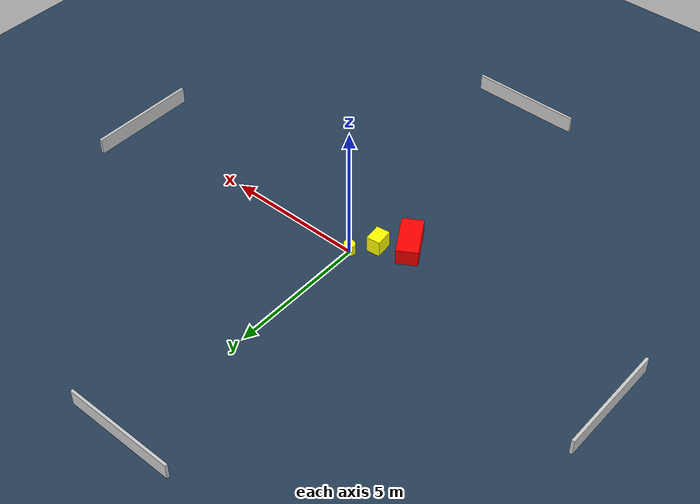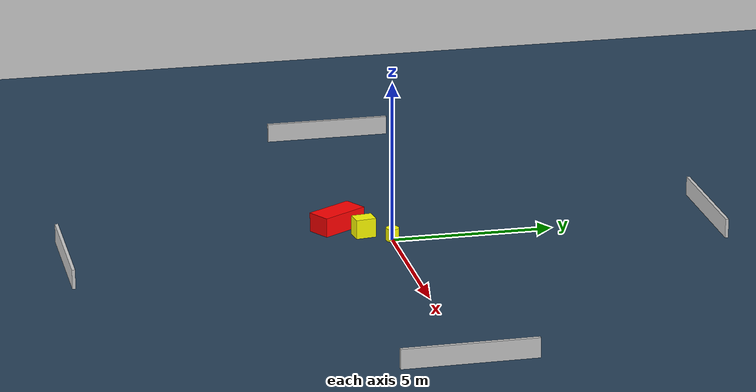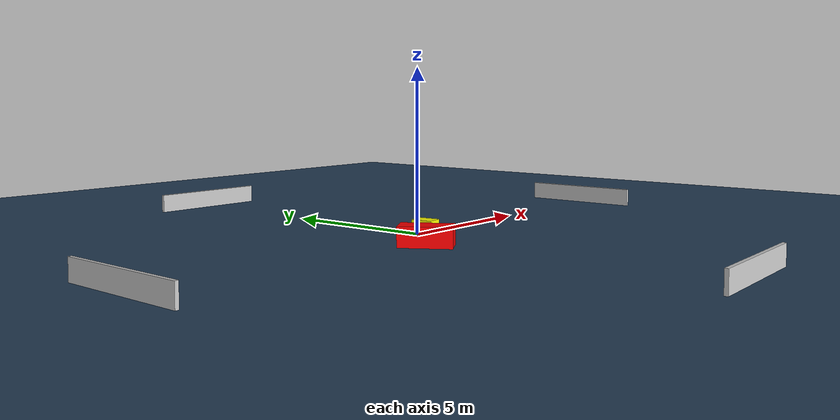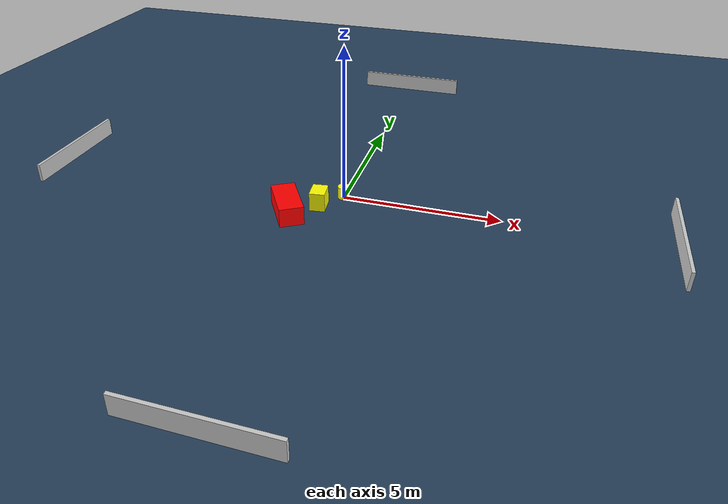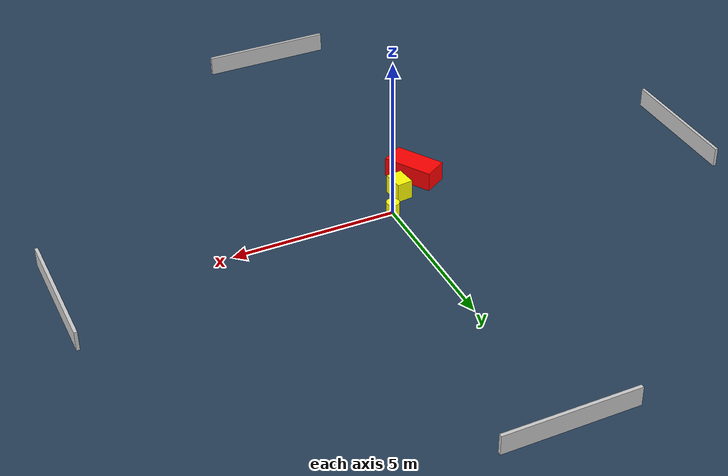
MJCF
<?xml version="1.0" ?>
<mujoco model="generated_environment">
  <option timestep="0.01" integrator="RK4" cone="elliptic"/>
  <default>
    <geom density="1"/>
  </default>
  <asset>
    <texture builtin="gradient" height="3072" name="skybox" rgb1="0.3 0.5 0.7" rgb2="0 0 0" type="skybox" width="512"/>
    <texture builtin="checker" height="300" name="groundplane" rgb1="0.2 0.3 0.4" rgb2="0.1 0.2 0.3" type="2d" width="300"/>
    <material name="groundplane" reflectance="0.2" texrepeat="5 5" texture="groundplane"/>
  </asset>
  <worldbody>
    <light dir="0 0 -1" directional="true" pos="0 0 1.5"/>
    <geom condim="3" friction="0.5 0.005 0.001" material="groundplane" name="floor" pos="0 0 0" size="0 0 0.05" type="plane"/>
    <body name="walls">
      <geom name="wall_1" condim="4" pos="-10.0 0.0 0.3" rgba="0.800000011920929 0.800000011920929 0.800000011920929 1.0" size="0.05 2.0 0.3" type="box"/>
      <geom name="wall_2" condim="4" pos="10.0 0.0 0.3" rgba="0.800000011920929 0.800000011920929 0.800000011920929 1.0" size="0.05 2.0 0.3" type="box"/>
      <geom name="wall_3" condim="4" pos="0.0 -10.0 0.3" rgba="0.800000011920929 0.800000011920929 0.800000011920929 1.0" size="2.0 0.05 0.3" type="box"/>
      <geom name="wall_4" condim="4" pos="0.0 10.0 0.3" rgba="0.800000011920929 0.800000011920929 0.800000011920929 1.0" size="2.0 0.05 0.3" type="box"/>
    </body>
    <body name="robot">
      <joint name="joint_x" type="slide" pos="0 0 0" axis="1 0 0"/>
      <joint name="joint_y" type="slide" pos="0 0 0" axis="0 1 0"/>
      <geom name="robot" type="cylinder" pos="0.0 0.0 0.2" size="0.2 0.2 0.0" mass="5.0" friction="1.0 0.005 0.0001" condim="4" rgba="1.0 1.0 0.0 1.0"/>
    </body>
    <body name="obstacle_1_movable">
      <geom name="obstacle_1_movable" condim="4" pos="-0.5819122818580643 -0.7695996167744186 0.3" euler="0 0 276.9668108693121" friction="0.0 0.005 0.001" rgba="1.0 1.0 0.0 1.0" size="0.31582328621857686 0.244803297962977 0.3" type="box" mass="0.1"/>
      <joint type="free"/>
    </body>
    <body name="obstacle_2_static">
      <geom name="obstacle_2_static" condim="4" pos="-1.3847895467704125 -1.4355803095132464 0.3" euler="0 0 301.3586618657272" friction="0.0 0.005 0.001" rgba="1.0 0.0 0.0 1.0" size="0.7808800520331627 0.3800866284214393 0.3" type="box"/>
    </body>
  </worldbody>
  <actuator>
    <motor name="actuator_x" joint="joint_x" gear="1" ctrlrange="-1 1"/>
    <motor name="actuator_y" joint="joint_y" gear="1" ctrlrange="-1 1"/>
  </actuator>
</mujoco>
